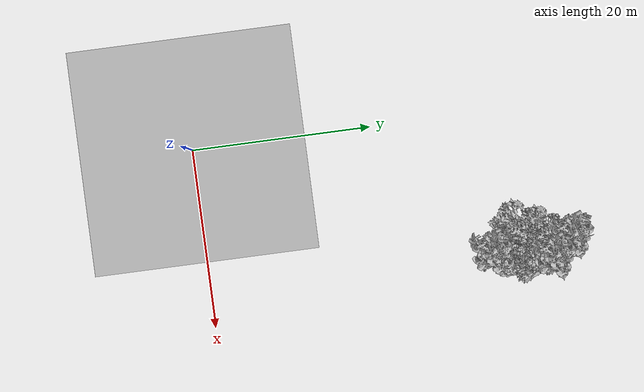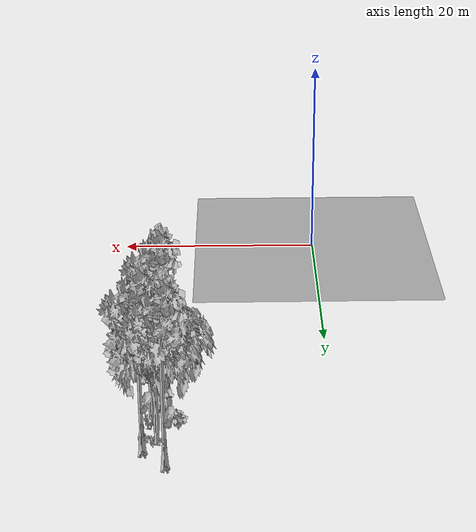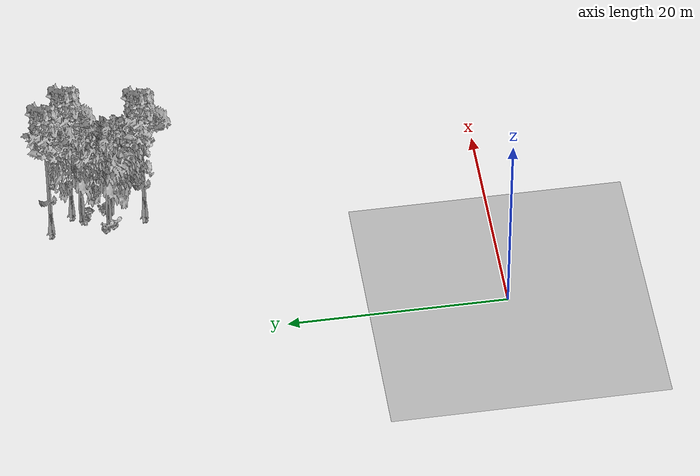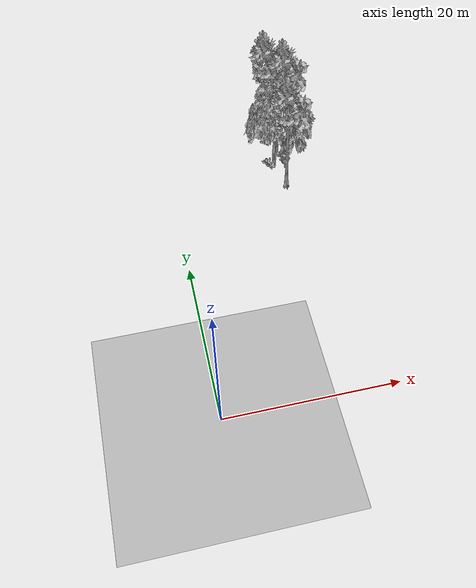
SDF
<sdf version="1.7">
 <world name="default">
  <model name="ground_plane">
   <static>1</static>
   <link name="link">
    <collision name="collision">
     <pose>-50 0 0 0 -0 0</pose>
     <geometry><plane><normal>0 0 1</normal><size>80 80</size></plane></geometry>
     <surface><contact><ode><min_depth>0.01</min_depth><max_vel>0</max_vel></ode></contact></surface>
    </collision>
    <visual name="grass">
     <cast_shadows>0</cast_shadows>
     <geometry>
      <mesh>
       <scale>0.46714285714285714 0.46714285714285714 0.1</scale>
       <uri>file://grass_plane/meshes/grass_plane.dae</uri>
      </mesh>
     </geometry>
    </visual>
   </link>
  </model>
  <model name="Tree 52">
   <static>1</static>
   <pose>14.883844812918682 31.04629690657255 0 1.57079 -0 0</pose>
   <link name="link">
    <collision name="collision">
     <geometry><mesh><scale>3.5 5 3.5</scale><uri>model://tree_9/meshes/tree_9.obj</uri></mesh></geometry>
    </collision>
    <visual name="visual">
     <geometry><mesh><scale>3.5 5 3.5</scale><uri>model://tree_9/meshes/tree_9.obj</uri></mesh></geometry>
    </visual>
   </link>
  </model>
  <model name="Tree 374">
   <static>1</static>
   <pose>13.949251400965679 34.41561213665682 0 1.57079 -0 0</pose>
   <link name="link">
    <collision name="collision">
     <geometry><mesh><scale>3.5 5 3.5</scale><uri>model://tree_2/meshes/tree_2.obj</uri></mesh></geometry>
    </collision>
    <visual name="visual">
     <geometry><mesh><scale>3.5 5 3.5</scale><uri>model://tree_2/meshes/tree_2.obj</uri></mesh></geometry>
    </visual>
   </link>
  </model>
  <model name="Tree 409">
   <static>1</static>
   <pose>14.162590708027174 39.690100378683994 0 1.57079 -0 0</pose>
   <link name="link">
    <collision name="collision">
     <geometry><mesh><scale>3.5 5 3.5</scale><uri>model://tree_9/meshes/tree_9.obj</uri></mesh></geometry>
    </collision>
    <visual name="visual">
     <geometry><mesh><scale>3.5 5 3.5</scale><uri>model://tree_9/meshes/tree_9.obj</uri></mesh></geometry>
    </visual>
   </link>
  </model>
  <model name="Tree 426">
   <static>1</static>
   <pose>15.429067353450556 33.98964180167147 0 1.57079 -0 0</pose>
   <link name="link">
    <collision name="collision">
     <geometry><mesh><scale>3.5 5 3.5</scale><uri>model://tree_2/meshes/tree_2.obj</uri></mesh></geometry>
    </collision>
    <visual name="visual">
     <geometry><mesh><scale>3.5 5 3.5</scale><uri>model://tree_2/meshes/tree_2.obj</uri></mesh></geometry>
    </visual>
   </link>
  </model>
  <model name="Tree 451">
   <static>1</static>
   <pose>16.110920961239238 37.60545894157802 0 1.57079 -0 0</pose>
   <link name="link">
    <collision name="collision">
     <geometry><mesh><scale>3.5 5 3.5</scale><uri>model://tree_9/meshes/tree_9.obj</uri></mesh></geometry>
    </collision>
    <visual name="visual">
     <geometry><mesh><scale>3.5 5 3.5</scale><uri>model://tree_9/meshes/tree_9.obj</uri></mesh></geometry>
    </visual>
   </link>
  </model>
  <model name="Tree 494">
   <static>1</static>
   <pose>14.863181899010563 36.788962849965415 0 1.57079 -0 0</pose>
   <link name="link">
    <collision name="collision">
     <geometry><mesh><scale>3.5 5 3.5</scale><uri>model://tree_2/meshes/tree_2.obj</uri></mesh></geometry>
    </collision>
    <visual name="visual">
     <geometry><mesh><scale>3.5 5 3.5</scale><uri>model://tree_2/meshes/tree_2.obj</uri></mesh></geometry>
    </visual>
   </link>
  </model>
  <model name="Bush 28">
   <static>1</static>
   <pose>13.636460258536928 34.02447597864686 0 1.57079 -0 0</pose>
   <link name="link">
    <collision name="collision">
     <geometry><mesh><scale>2 2 2</scale><uri>model://bush_0/meshes/bush_0.obj</uri></mesh></geometry>
     <surface><contact><collide_without_contact>false</collide_without_contact></contact></surface>
    </collision>
    <visual name="visual">
     <geometry><mesh><scale>2 2 2</scale><uri>model://bush_0/meshes/bush_0.obj</uri></mesh></geometry>
    </visual>
   </link>
  </model>
  <model name="Bush 52">
   <static>1</static>
   <pose>16.022129528960946 36.08208975448734 0 1.57079 -0 0</pose>
   <link name="link">
    <collision name="collision">
     <geometry><mesh><scale>2 2 2</scale><uri>model://bush_2/meshes/bush_2.obj</uri></mesh></geometry>
     <surface><contact><collide_without_contact>false</collide_without_contact></contact></surface>
    </collision>
    <visual name="visual">
     <geometry><mesh><scale>2 2 2</scale><uri>model://bush_2/meshes/bush_2.obj</uri></mesh></geometry>
    </visual>
   </link>
  </model>
  <model name="Bush 71">
   <static>1</static>
   <pose>15.625474954369992 34.68675926334596 0 1.57079 -0 0</pose>
   <link name="link">
    <collision name="collision">
     <geometry><mesh><scale>2 2 2</scale><uri>model://bush_4/meshes/bush_4.obj</uri></mesh></geometry>
     <surface><contact><collide_without_contact>false</collide_without_contact></contact></surface>
    </collision>
    <visual name="visual">
     <geometry><mesh><scale>2 2 2</scale><uri>model://bush_4/meshes/bush_4.obj</uri></mesh></geometry>
    </visual>
   </link>
  </model>
  <model name="Bush 112">
   <static>1</static>
   <pose>13.234305440141426 34.76056888776364 0 1.57079 -0 0</pose>
   <link name="link">
    <collision name="collision">
     <geometry><mesh><scale>2 2 2</scale><uri>model://bush_0/meshes/bush_0.obj</uri></mesh></geometry>
     <surface><contact><collide_without_contact>false</collide_without_contact></contact></surface>
    </collision>
    <visual name="visual">
     <geometry><mesh><scale>2 2 2</scale><uri>model://bush_0/meshes/bush_0.obj</uri></mesh></geometry>
    </visual>
   </link>
  </model>
  <model name="Bush 384">
   <static>1</static>
   <pose>15.011668626132753 36.51008853178935 0 1.57079 -0 0</pose>
   <link name="link">
    <collision name="collision">
     <geometry><mesh><scale>2 2 2</scale><uri>model://bush_2/meshes/bush_2.obj</uri></mesh></geometry>
     <surface><contact><collide_without_contact>false</collide_without_contact></contact></surface>
    </collision>
    <visual name="visual">
     <geometry><mesh><scale>2 2 2</scale><uri>model://bush_2/meshes/bush_2.obj</uri></mesh></geometry>
    </visual>
   </link>
  </model>
 </world>
</sdf>
